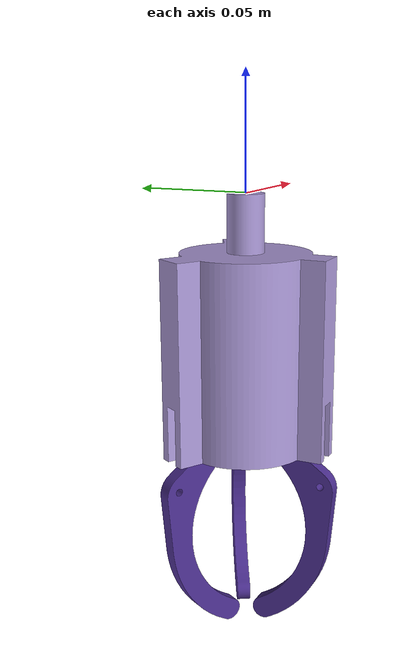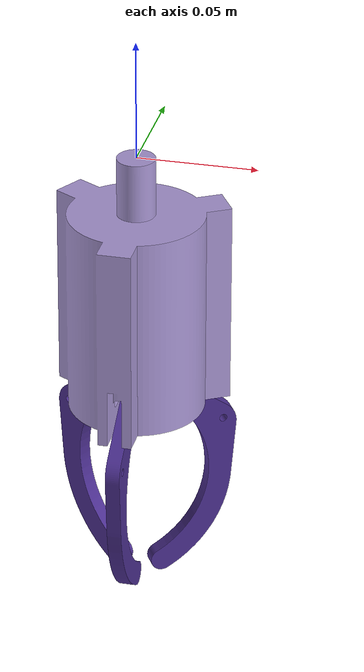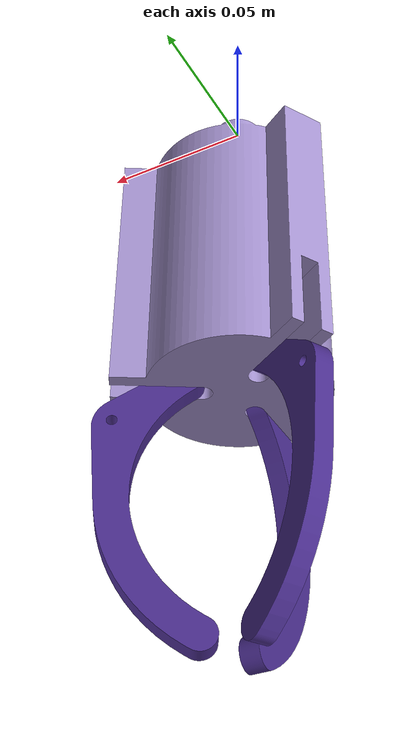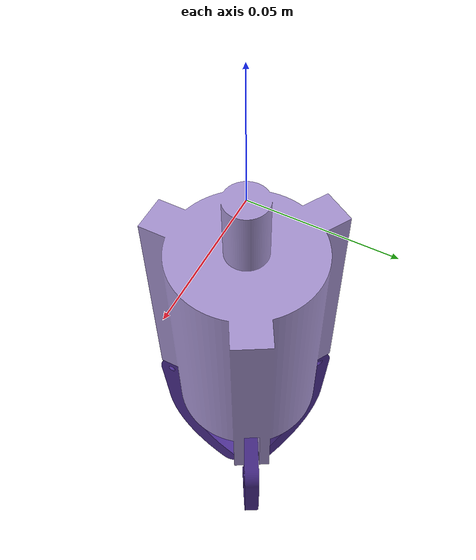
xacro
<?xml version="1.0" ?>
<!-- Generated using onshape-to-robot -->
<!-- Onshape https://cad.onshape.com/documents/862e8c6c3191e2050c2f0c77/w/c0f9f357af393f0842a7b7ce/e/4f23dfc971c8123d3ac0b54e -->

<robot xmlns:xacro="http://ros.org/wiki/xacro">

<!-- ======================================= LINKS ============================================ -->

  <!-- Link gripper_body_link -->
  <link name="gripper_body_link">
    <inertial>
      <origin xyz="-4.05275e-10 8.37288e-10 -0.0687623" rpy="0 0 0"/>
      <mass value="0.125198"/>
      <inertia ixx="0.00016856" ixy="-6.41053e-13" ixz="-1.50248e-12" iyy="0.00016856" iyz="4.56882e-12" izz="9.25176e-05"/>
    </inertial>
    <visual>
      <origin xyz="0 -0.1361 -0.054" rpy="3.14159 -1.51858e-31 -7.13552e-32"/>
      <geometry>
        <mesh filename="package://gripperbot_description/assets/gripper/gripper_body_link.stl"/>
      </geometry>
      <material name="gripper_body_link_material">
        <color rgba="0.654902 0.584314 0.823529 1"/>
      </material>
    </visual>
    <collision>
      <origin xyz="0 -0.1361 -0.054" rpy="3.14159 -1.51858e-31 -7.13552e-32"/>
      <geometry>
        <mesh filename="package://gripperbot_description/assets/gripper/gripper_body_link.stl"/>
      </geometry>
    </collision>
  </link>
  <!-- END Link gripper_body_link -->

  <!-- Link gripper_arm_link_1 -->
  <link name="gripper_arm_link_1">
    <inertial>
      <origin xyz="0.0329865 0.0247847 0.003" rpy="0 0 0"/>
      <mass value="0.00753434"/>
      <inertia ixx="4.33594e-06" ixy="-2.13713e-06" ixz="3.39419e-15" iyy="1.76823e-06" iyz="1.34526e-14" izz="6.05896e-06"/>
    </inertial>
    <visual>
      <origin xyz="0 0 -0.004" rpy="-4.80254e-18 -2.92476e-18 5.32903e-17"/>
      <geometry>
        <mesh filename="package://gripperbot_description/assets/gripper/gripper_arm_link.stl"/>
      </geometry>
      <material name="gripper_arm_link_1_material">
        <color rgba="0.294118 0.180392 0.560784 1"/>
      </material>
    </visual>
    <collision>
      <origin xyz="0 0 -0.004" rpy="-4.80254e-18 -2.92476e-18 5.32903e-17"/>
      <geometry>
        <mesh filename="package://gripperbot_description/assets/gripper/gripper_arm_link.stl"/>
      </geometry>
    </collision>
  </link>
  <!-- END Link gripper_arm_link_1 -->

  <!-- Link gripper_arm_link_2 -->
  <link name="gripper_arm_link_2">
    <inertial>
      <origin xyz="0.0329865 0.0247847 -0.003" rpy="0 0 0"/>
      <mass value="0.00753434"/>
      <inertia ixx="4.33594e-06" ixy="-2.13713e-06" ixz="3.39419e-15" iyy="1.76823e-06" iyz="1.34526e-14" izz="6.05896e-06"/>
    </inertial>
    <visual>
      <origin xyz="0 -1.11022e-16 -0.01" rpy="6.05967e-17 6.39472e-17 -1.15544e-17"/>
      <geometry>
        <mesh filename="package://gripperbot_description/assets/gripper/gripper_arm_link.stl"/>
      </geometry>
      <material name="gripper_arm_link_2_material">
        <color rgba="0.294118 0.180392 0.560784 1"/>
      </material>
    </visual>
    <collision>
      <origin xyz="0 -1.11022e-16 -0.01" rpy="6.05967e-17 6.39472e-17 -1.15544e-17"/>
      <geometry>
        <mesh filename="package://gripperbot_description/assets/gripper/gripper_arm_link.stl"/>
      </geometry>
    </collision>
  </link>
  <!-- END Link gripper_arm_link_2 -->

   <!-- Link gripper_arm_link_3 -->
  <link name="gripper_arm_link_3">
    <inertial>
      <origin xyz="0.0329865 0.0247847 -0.003" rpy="0 0 0"/>
      <mass value="0.00753434"/>
      <inertia ixx="4.33594e-06" ixy="-2.13713e-06" ixz="3.39419e-15" iyy="1.76823e-06" iyz="1.34526e-14" izz="6.05896e-06"/>
    </inertial>
    <visual>
      <origin xyz="1.11022e-16 0 -0.01" rpy="2.20238e-31 9.78201e-31 -6.16684e-17"/>
      <geometry>
        <mesh filename="package://gripperbot_description/assets/gripper/gripper_arm_link.stl"/>
      </geometry>
      <material name="gripper_arm_link_3_material">
        <color rgba="0.294118 0.180392 0.560784 1"/>
      </material>
    </visual>
    <collision>
      <origin xyz="1.11022e-16 0 -0.01" rpy="2.20238e-31 9.78201e-31 -6.16684e-17"/>
      <geometry>
        <mesh filename="package://gripperbot_description/assets/gripper/gripper_arm_link.stl"/>
      </geometry>
    </collision>
  </link>
  <!-- END Link gripper_arm_link_3 -->

<!-- =================================== JOINTS ===================================== -->

  <!-- Joint from gripper_body_link to gripper_arm_link_1 -->
  <joint name="arm1_to_gripperbody_joint" type="revolute">
    <origin xyz="-0.0116776 0.0102062 -0.1085" rpy="-1.5708 0.611 2.61799"/>
    <parent link="gripper_body_link"/>
    <child link="gripper_arm_link_1"/>
    <axis xyz="0 0 1"/>
    <limit effort="100" velocity="100" lower="-0.791" upper="1.06581e-14"/>
  </joint>

  <!-- Joint from gripper_body_link to gripper_arm_link_2 -->
  <joint name="arm2_to_gripperbody_joint" type="revolute">
    <origin xyz="0.0116776 0.0102062 -0.1085" rpy="-1.5708 0.611 0.523599"/>
    <parent link="gripper_body_link"/>
    <child link="gripper_arm_link_2"/>
    <axis xyz="0 0 1"/>
    <limit effort="100" velocity="100" lower="-0.791" upper="0"/>
    <mimic joint="arm1_to_gripperbody_joint" multiplier="1" offset="0"/>
  </joint>

  <!-- Joint from gripper_body_link to gripper_arm_link_3 -->
  <joint name="arm3_to_gripperbody_joint" type="revolute">
    <origin xyz="0.003 -0.0152162 -0.1085" rpy="-1.5708 0.611 -1.5708"/>
    <parent link="gripper_body_link"/>
    <child link="gripper_arm_link_3"/>
    <axis xyz="0 0 1"/>
    <limit effort="100" velocity="100" lower="-0.791" upper="0"/>
    <mimic joint="arm1_to_gripperbody_joint" multiplier="1" offset="0"/>
  </joint>

</robot>
